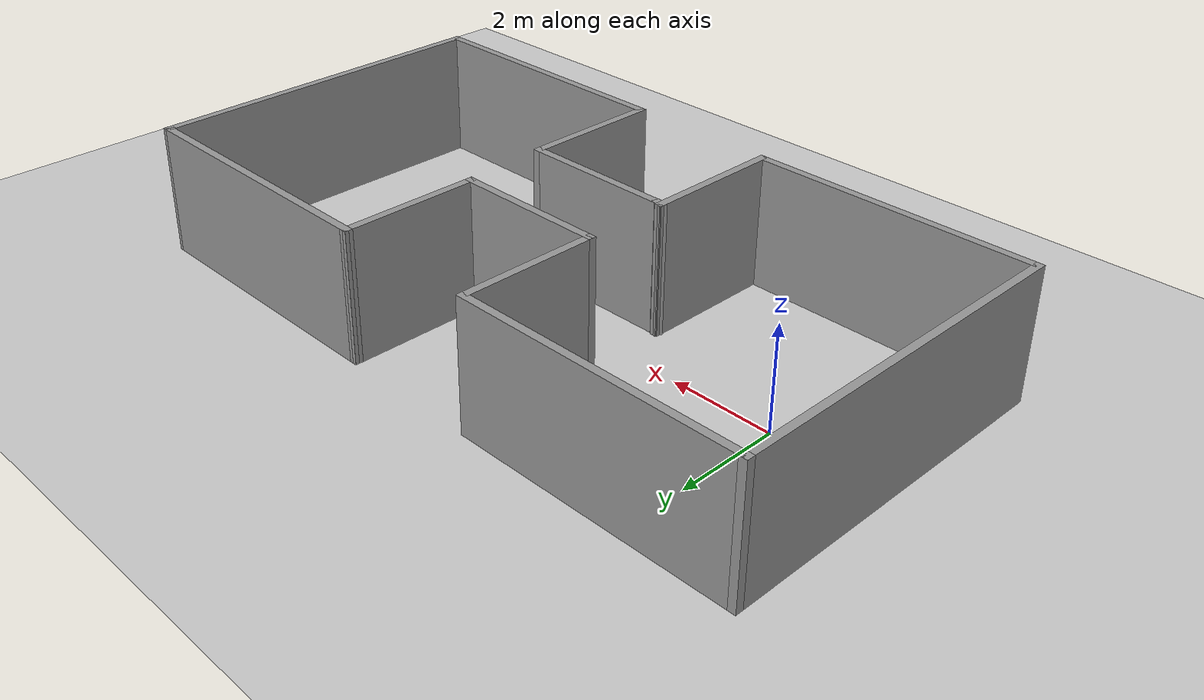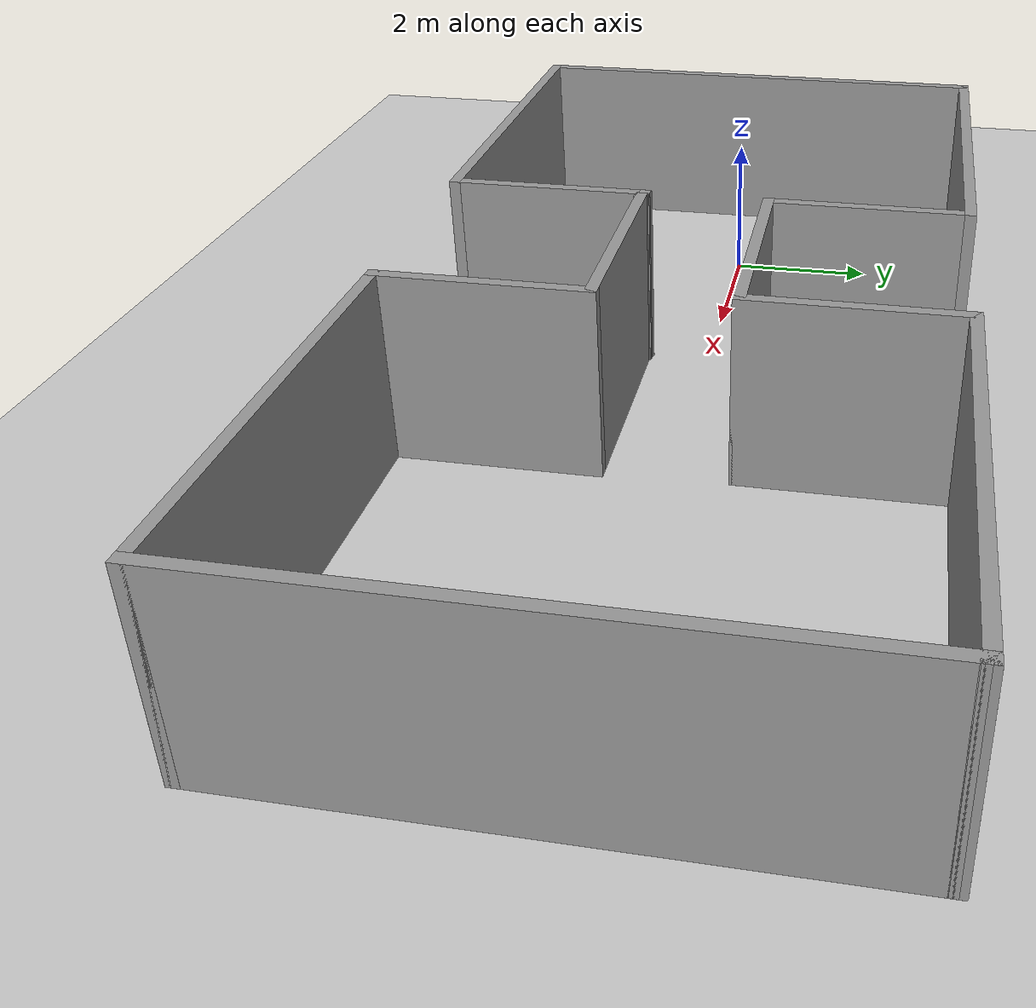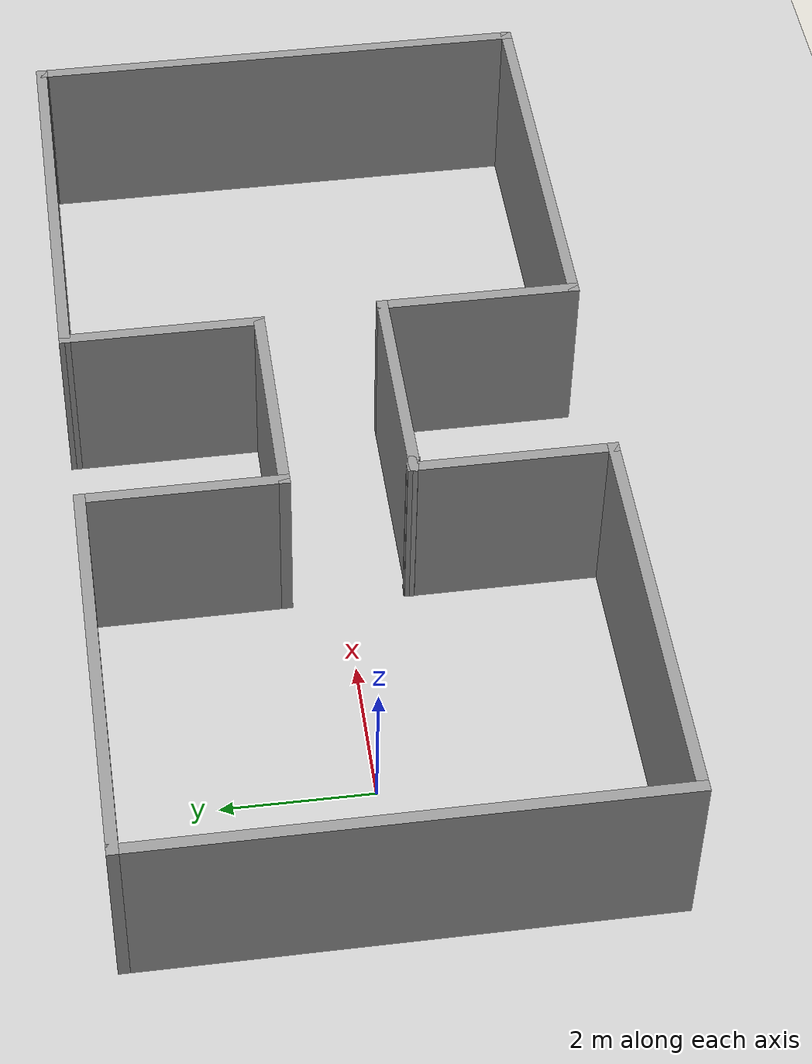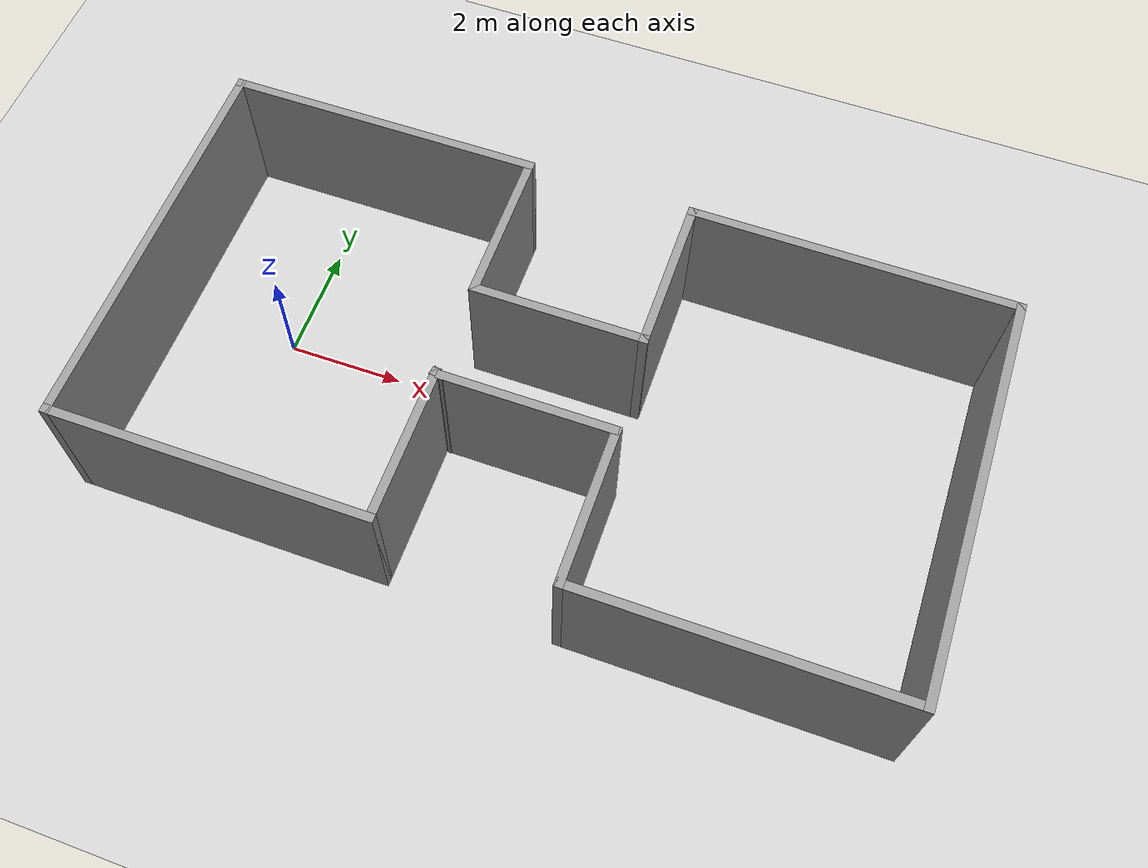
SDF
<sdf version="1.6">
 <world name="default">
  <light name="sun" type="directional">
   <pose>0 0 10 0 -0 0</pose>
   <diffuse>0.8 0.8 0.8 1</diffuse>
   <specular>0.2 0.2 0.2 1</specular>
   <attenuation>
    <range>1000</range>
    <constant>0.9</constant>
    <linear>0.01</linear>
    <quadratic>0.001</quadratic>
   </attenuation>
   <direction>-0.5 0.1 -0.9</direction>
  </light>
  <model name="ground_plane">
   <static>1</static>
   <link name="link">
    <collision name="collision">
     <geometry><plane><normal>0 0 1</normal><size>100 100</size></plane></geometry>
     <surface><friction><ode><mu>100</mu><mu2>50</mu2></ode></friction></surface>
    </collision>
    <visual name="visual">
     <cast_shadows>0</cast_shadows>
     <geometry><plane><normal>0 0 1</normal><size>100 100</size></plane></geometry>
     <material>
      <script><uri>file://media/materials/scripts/gazebo.material</uri><name>Gazebo/Grey</name></script>
     </material>
    </visual>
   </link>
  </model>
  <gravity>0 0 -9.8</gravity>
  <magnetic_field>6e-06 2.3e-05 -4.2e-05</magnetic_field>
  <atmosphere type="adiabatic"/>
  <physics name="default_physics" default="0" type="ode">
   <max_step_size>0.001</max_step_size>
   <real_time_factor>1</real_time_factor>
   <real_time_update_rate>1000</real_time_update_rate>
  </physics>
  <scene><ambient>0.4 0.4 0.4 1</ambient><background>0.7 0.7 0.7 1</background><shadows>1</shadows></scene>
  <audio><device>default</device></audio>
  <spherical_coordinates>
   <surface_model>EARTH_WGS84</surface_model>
   <latitude_deg>0</latitude_deg>
   <longitude_deg>0</longitude_deg>
   <elevation>0</elevation>
   <heading_deg>0</heading_deg>
  </spherical_coordinates>
  <model name="Untitled">
   <pose>4.68891 -0.06001 0 0 0 -1.56866</pose>
   <link name="Wall_0">
    <collision name="Wall_0_Collision">
     <geometry><box><size>7 0.15 2.5</size></box></geometry>
     <pose>0 0 1.25 0 -0 0</pose>
    </collision>
    <visual name="Wall_0_Visual">
     <pose>0 0 1.25 0 -0 0</pose>
     <geometry><box><size>7 0.15 2.5</size></box></geometry>
     <material>
      <script><uri>file://media/materials/scripts/gazebo.material</uri><name>Gazebo/Grey</name></script>
      <ambient>1 1 1 1</ambient>
     </material>
     <meta><layer>0</layer></meta>
    </visual>
    <pose>0.013118 6.82312 0 0 -0 0</pose>
   </link>
   <link name="Wall_1">
    <collision name="Wall_1_Collision">
     <geometry><box><size>5.5 0.15 2.5</size></box></geometry>
     <pose>0 0 1.25 0 -0 0</pose>
    </collision>
    <visual name="Wall_1_Visual">
     <pose>0 0 1.25 0 -0 0</pose>
     <geometry><box><size>5.5 0.15 2.5</size></box></geometry>
     <material>
      <script><uri>file://media/materials/scripts/gazebo.material</uri><name>Gazebo/Grey</name></script>
      <ambient>1 1 1 1</ambient>
     </material>
     <meta><layer>0</layer></meta>
    </visual>
    <pose>3.43812 4.14812 0 0 -0 -1.5708</pose>
   </link>
   <link name="Wall_10">
    <collision name="Wall_10_Collision">
     <geometry><box><size>3 0.15 2.5</size></box></geometry>
     <pose>0 0 1.25 0 -0 0</pose>
    </collision>
    <visual name="Wall_10_Visual">
     <pose>0 0 1.25 0 -0 0</pose>
     <geometry><box><size>3 0.15 2.5</size></box></geometry>
     <material>
      <script><uri>file://media/materials/scripts/gazebo.material</uri><name>Gazebo/Grey</name></script>
      <ambient>1 1 1 1</ambient>
     </material>
     <meta><layer>0</layer></meta>
    </visual>
    <pose>-0.837764 -0.048474 0 0 -0 1.5708</pose>
   </link>
   <link name="Wall_11">
    <collision name="Wall_11_Collision">
     <geometry><box><size>2.75 0.15 2.5</size></box></geometry>
     <pose>0 0 1.25 0 -0 0</pose>
    </collision>
    <visual name="Wall_11_Visual">
     <pose>0 0 1.25 0 -0 0</pose>
     <geometry><box><size>2.75 0.15 2.5</size></box></geometry>
     <material>
      <script><uri>file://media/materials/scripts/gazebo.material</uri><name>Gazebo/Grey</name></script>
      <ambient>1 1 1 1</ambient>
     </material>
     <meta><layer>0</layer></meta>
    </visual>
    <pose>-2.13776 1.37653 0 0 -0 3.14159</pose>
   </link>
   <link name="Wall_12">
    <collision name="Wall_12_Collision">
     <geometry><box><size>5.59665 0.15 2.5</size></box></geometry>
     <pose>0 0 1.25 0 -0 0</pose>
    </collision>
    <visual name="Wall_12_Visual">
     <pose>0 0 1.25 0 -0 0</pose>
     <geometry><box><size>5.59665 0.15 2.5</size></box></geometry>
     <material>
      <script><uri>file://media/materials/scripts/gazebo.material</uri><name>Gazebo/Grey</name></script>
      <ambient>1 1 1 1</ambient>
     </material>
     <meta><layer>0</layer></meta>
    </visual>
    <pose>-3.42482 4.09982 0 0 -0 1.56604</pose>
   </link>
   <link name="Wall_13">
    <collision name="Wall_13_Collision">
     <geometry><box><size>0.16 0.15 2.5</size></box></geometry>
     <pose>0 0 1.25 0 -0 0</pose>
    </collision>
    <visual name="Wall_13_Visual">
     <pose>0 0 1.25 0 -0 0</pose>
     <geometry><box><size>0.16 0.15 2.5</size></box></geometry>
     <material>
      <script><uri>file://media/materials/scripts/gazebo.material</uri><name>Gazebo/Grey</name></script>
      <ambient>1 1 1 1</ambient>
     </material>
     <meta><layer>0</layer></meta>
    </visual>
    <pose>-3.40688 6.82312 0 0 -0 0</pose>
   </link>
   <link name="Wall_14">
    <collision name="Wall_14_Collision">
     <geometry><box><size>0.16 0.15 2.5</size></box></geometry>
     <pose>0 0 1.25 0 -0 0</pose>
    </collision>
    <visual name="Wall_14_Visual">
     <pose>0 0 1.25 0 -0 0</pose>
     <geometry><box><size>0.16 0.15 2.5</size></box></geometry>
     <material>
      <script><uri>file://media/materials/scripts/gazebo.material</uri><name>Gazebo/Grey</name></script>
      <ambient>1 1 1 1</ambient>
     </material>
     <meta><layer>0</layer></meta>
    </visual>
    <pose>-3.39688 6.82312 0 0 -0 0</pose>
   </link>
   <link name="Wall_2">
    <collision name="Wall_2_Collision">
     <geometry><box><size>2.75 0.15 2.5</size></box></geometry>
     <pose>0 0 1.25 0 -0 0</pose>
    </collision>
    <visual name="Wall_2_Visual">
     <pose>0 0 1.25 0 -0 0</pose>
     <geometry><box><size>2.75 0.15 2.5</size></box></geometry>
     <material>
      <script><uri>file://media/materials/scripts/gazebo.material</uri><name>Gazebo/Grey</name></script>
      <ambient>1 1 1 1</ambient>
     </material>
     <meta><layer>0</layer></meta>
    </visual>
    <pose>2.13812 1.47312 0 0 -0 3.14159</pose>
   </link>
   <link name="Wall_3">
    <collision name="Wall_3_Collision">
     <geometry><box><size>3 0.15 2.5</size></box></geometry>
     <pose>0 0 1.25 0 -0 0</pose>
    </collision>
    <visual name="Wall_3_Visual">
     <pose>0 0 1.25 0 -0 0</pose>
     <geometry><box><size>3 0.15 2.5</size></box></geometry>
     <material>
      <script><uri>file://media/materials/scripts/gazebo.material</uri><name>Gazebo/Grey</name></script>
      <ambient>1 1 1 1</ambient>
     </material>
     <meta><layer>0</layer></meta>
    </visual>
    <pose>0.838118 0.048118 0 0 -0 -1.5708</pose>
   </link>
   <link name="Wall_4">
    <collision name="Wall_4_Collision">
     <geometry><box><size>0.25 0.15 2.5</size></box></geometry>
     <pose>0 0 1.25 0 -0 0</pose>
    </collision>
    <visual name="Wall_4_Visual">
     <pose>0 0 1.25 0 -0 0</pose>
     <geometry><box><size>0.25 0.15 2.5</size></box></geometry>
     <material>
      <script><uri>file://media/materials/scripts/gazebo.material</uri><name>Gazebo/Grey</name></script>
      <ambient>1 1 1 1</ambient>
     </material>
     <meta><layer>0</layer></meta>
    </visual>
    <pose>0.825177 -1.42518 0 0 -0 -1.8326</pose>
   </link>
   <link name="Wall_5">
    <collision name="Wall_5_Collision">
     <geometry><box><size>2.75 0.15 2.5</size></box></geometry>
     <pose>0 0 1.25 0 -0 0</pose>
    </collision>
    <visual name="Wall_5_Visual">
     <pose>0 0 1.25 0 -0 0</pose>
     <geometry><box><size>2.75 0.15 2.5</size></box></geometry>
     <material>
      <script><uri>file://media/materials/scripts/gazebo.material</uri><name>Gazebo/Grey</name></script>
      <ambient>1 1 1 1</ambient>
     </material>
     <meta><layer>0</layer></meta>
    </visual>
    <pose>2.11224 -1.47347 0 0 -0 0</pose>
   </link>
   <link name="Wall_6">
    <collision name="Wall_6_Collision">
     <geometry><box><size>5.5 0.15 2.5</size></box></geometry>
     <pose>0 0 1.25 0 -0 0</pose>
    </collision>
    <visual name="Wall_6_Visual">
     <pose>0 0 1.25 0 -0 0</pose>
     <geometry><box><size>5.5 0.15 2.5</size></box></geometry>
     <material>
      <script><uri>file://media/materials/scripts/gazebo.material</uri><name>Gazebo/Grey</name></script>
      <ambient>1 1 1 1</ambient>
     </material>
     <meta><layer>0</layer></meta>
    </visual>
    <pose>3.41224 -4.14847 0 0 -0 -1.5708</pose>
   </link>
   <link name="Wall_7">
    <collision name="Wall_7_Collision">
     <geometry><box><size>7 0.15 2.5</size></box></geometry>
     <pose>0 0 1.25 0 -0 0</pose>
    </collision>
    <visual name="Wall_7_Visual">
     <pose>0 0 1.25 0 -0 0</pose>
     <geometry><box><size>7 0.15 2.5</size></box></geometry>
     <material>
      <script><uri>file://media/materials/scripts/gazebo.material</uri><name>Gazebo/Grey</name></script>
      <ambient>1 1 1 1</ambient>
     </material>
     <meta><layer>0</layer></meta>
    </visual>
    <pose>-0.012764 -6.82347 0 0 -0 3.14159</pose>
   </link>
   <link name="Wall_8">
    <collision name="Wall_8_Collision">
     <geometry><box><size>5.5 0.15 2.5</size></box></geometry>
     <pose>0 0 1.25 0 -0 0</pose>
    </collision>
    <visual name="Wall_8_Visual">
     <pose>0 0 1.25 0 -0 0</pose>
     <geometry><box><size>5.5 0.15 2.5</size></box></geometry>
     <material>
      <script><uri>file://media/materials/scripts/gazebo.material</uri><name>Gazebo/Grey</name></script>
      <ambient>1 1 1 1</ambient>
     </material>
     <meta><layer>0</layer></meta>
    </visual>
    <pose>-3.43776 -4.14847 0 0 -0 1.5708</pose>
   </link>
   <link name="Wall_9">
    <collision name="Wall_9_Collision">
     <geometry><box><size>2.75 0.15 2.5</size></box></geometry>
     <pose>0 0 1.25 0 -0 0</pose>
    </collision>
    <visual name="Wall_9_Visual">
     <pose>0 0 1.25 0 -0 0</pose>
     <geometry><box><size>2.75 0.15 2.5</size></box></geometry>
     <material>
      <script><uri>file://media/materials/scripts/gazebo.material</uri><name>Gazebo/Grey</name></script>
      <ambient>1 1 1 1</ambient>
     </material>
     <meta><layer>0</layer></meta>
    </visual>
    <pose>-2.13776 -1.47347 0 0 -0 0</pose>
   </link>
   <static>1</static>
  </model>
 </world>
</sdf>
